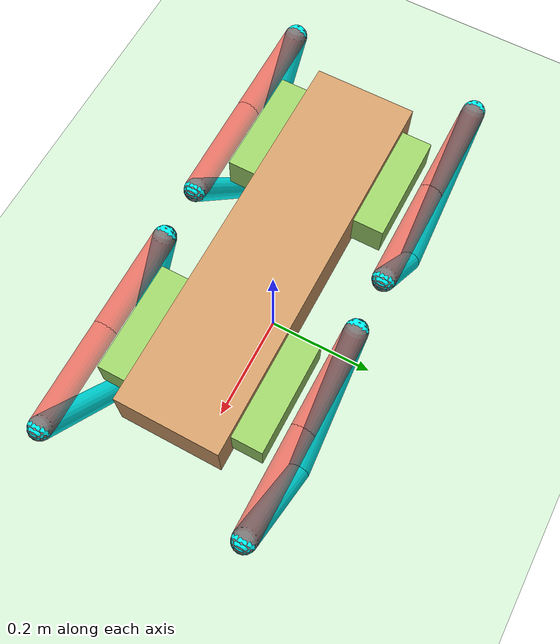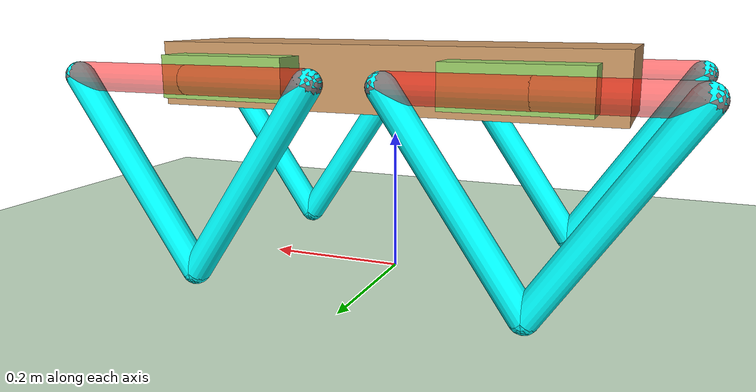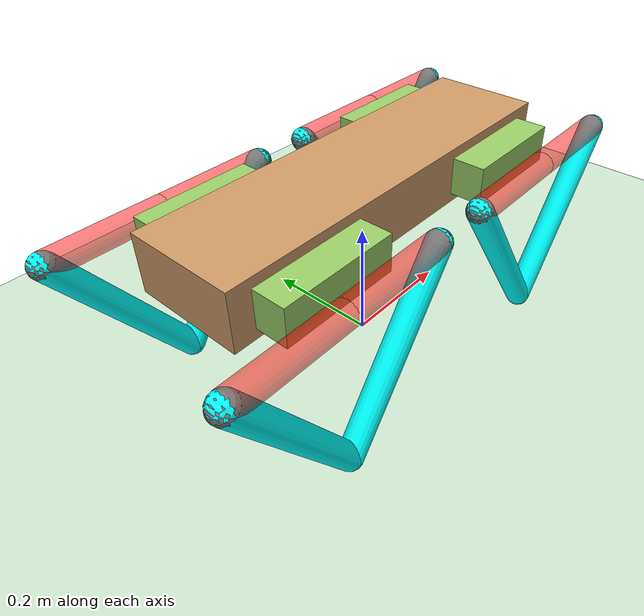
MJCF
<!-- Stanford Woofer Model

    The state space is populated with joints in the order that they are
    defined in this file.
-->
<mujoco model="woofer">
    <compiler angle="radian" coordinate="local" inertiafromgeom="auto"/>

    <default>
        <joint armature="0.0024" solimplimit="0.9 0.95 0.001" solreflimit="0.001 1" stiffness="0"/>
        <geom conaffinity="0" condim="3" contype="1" friction="1.5 .1 .1" rgba="0.8 0.6 .4 1" solimp="0.9 0.95 0.001" solref="0.005 2"/>
        <motor ctrllimited="true" forcelimited="true"/>
    </default>

    <option>
        <flag sensornoise="enable"/>
    </option>

    <sensor>
        <accelerometer name="accel" noise="0.01" site="imu_site"/>
        <gyro name="gyro" noise="0.02" site="imu_site"/>

        <jointpos joint="fr_x" noise="0.001"/>
        <jointpos joint="fr_thigh_1" noise="0.001"/>
        <jointpos joint="fr_thigh_2" noise="0.001"/>

        <jointpos joint="fl_x" noise="0.001"/>
        <jointpos joint="fl_thigh_1" noise="0.001"/>
        <jointpos joint="fl_thigh_2" noise="0.001"/>

        <jointpos joint="br_x" noise="0.001"/>
        <jointpos joint="br_thigh_1" noise="0.001"/>
        <jointpos joint="br_thigh_2" noise="0.001"/>

        <jointpos joint="bl_x" noise="0.001"/>
        <jointpos joint="bl_thigh_1" noise="0.001"/>
        <jointpos joint="bl_thigh_2" noise="0.001"/>

        <jointvel joint="fr_x" noise="0.01"/>
        <jointvel joint="fr_thigh_1" noise="0.01"/>
        <jointvel joint="fr_thigh_2" noise="0.01"/>

        <jointvel joint="fl_x" noise="0.01"/>
        <jointvel joint="fl_thigh_1" noise="0.01"/>
        <jointvel joint="fl_thigh_2" noise="0.01"/>

        <jointvel joint="br_x" noise="0.01"/>
        <jointvel joint="br_thigh_1" noise="0.01"/>
        <jointvel joint="br_thigh_2" noise="0.01"/>

        <jointvel joint="bl_x" noise="0.01"/>
        <jointvel joint="bl_thigh_1" noise="0.01"/>
        <jointvel joint="bl_thigh_2" noise="0.01"/>
    </sensor>

    <size nstack="300000" nuser_geom="1"/>

    <option timestep="0.0001"/>
    <asset>
        <texture builtin="gradient" height="100" rgb1="1 1 1" rgb2="0 0 0" type="skybox" width="100"/>
        <texture builtin="flat" height="1278" mark="cross" markrgb="1 1 1" name="texgeom" random="0.01" rgb1="0.8 0.6 0.4" rgb2="0.8 0.6 0.4" type="cube" width="127"/>
        <texture builtin="checker" height="100" name="texplane" rgb1="0 0 0" rgb2="0.8 0.8 0.8" type="2d" width="100"/>
        <material name="MatPlane" reflectance="0.5" shininess="1" specular="1" texrepeat="60 60" texture="texplane"/>
        <material name="geom" texture="texgeom" texuniform="true"/>
    </asset>

    <worldbody>
        <light cutoff="100" diffuse="1 1 1" dir="-0 0 -1.3" directional="true" exponent="1" pos="0 0 1.3" specular=".1 .1 .1"/>
        <geom conaffinity="1" condim="3" material="MatPlane" name="floor" pos="0 0 0" rgba="0.8 0.9 0.8 1" size="40 40 40" type="plane"/>

        <body name="torso" pos="0 0 0.2845751311064591">
            <camera name="track" mode="trackcom" pos="0 -2 0.3" xyaxes="1 0 0 0 0 1"/>
            <joint armature="0" axis="1 0 0" damping="0" limited="false" name="rootx" pos="0 0 0" stiffness="0" type="free"/>

            <inertial pos="0 0 0" mass="3.0" diaginertia="0.0065733 0.074011 0.077763"/>
            <geom pos="0 0 0" name="torso" size="0.33 0.088 0.046" type="box"/>

            <site name="imu_site" pos="0 0 0" size=".01 .01 .01" type="box"/>

            <body name="fr_module" pos="0.23 -0.109 0">
                <geom pos="-0.029 0 0" name="fr_block" type="box" size="0.094 0.031 0.03" rgba="0.6 0.8 .4 1"/>
                <joint axis="1 0 0" name="fr_x" pos="0 0 0" limited="true" range="-3.0 3.0" type="hinge" damping="0.2"/>
                <inertial pos="0 0 0" mass="1.033" fullinertia="0.002449 0.005043 0.006616 -0.001784 -.00002 -0.000007"/>
                <body name="fr_thigh_1" pos="0.09 -0.064 0">
                    <joint axis="0 1 0" name="fr_thigh_1" pos="-0.09 0 0" limited="true" range="-3.0 3.0" type="hinge" damping="0.2"/>
                    <geom axisangle="0 1 0 1.57" name="fr_thigh_1" size="0.02 0.09" type="capsule" rgba = "1 0 0 0.5" mass="0.07"/>
                    <body name="fr_shin_1" pos="0.00 0 -0.13228756555322954">
                        <joint axis="0 1 0" name="fr_shin_1" pos="0.09 0 0.13228756555322954" type="hinge"/>
                        <geom axisangle="0 1 0 0.5974064166453502" name="fr_shin_1" rgba="0 1 1 1" size="0.02 0.16" type="capsule" mass="0.059"/>
                    </body>
                </body>
                <body name="fr_thigh_2" pos="-0.09 -0.064 0">
                    <joint axis="0 1 0" name="fr_thigh_2" pos="0.09 0 0" limited="true" range="-3.0 3.0" type="hinge" damping="0.2"/>
                    <geom axisangle="0 1 0 1.57" name="fr_thigh_2" size="0.02 0.09" type="capsule" rgba = "1 0 0 0.5" mass="0.07"/>
                    <body name="fr_shin_2" pos="0.00 0 -0.13228756555322954">
                        <joint axis="0 1 0" name="fr_shin_2" pos="-0.09 0 0.13228756555322954" type="hinge"/>
                        <geom axisangle="0 1 0 -0.5974064166453502" name="fr_shin_2" rgba="0 1 1 1" size="0.02 0.16" type="capsule" mass="0.059"/>
                    </body>
                </body>
            </body>

            <body name="fl_module" pos="0.23 0.109 0">
                <geom pos = "-0.029 0 0" name="fl_block" type="box" size="0.094 0.031 0.03" rgba="0.6 0.8 .4 1"/>
                <joint axis="1 0 0" name="fl_x" pos="0 0 0" limited="true" range="-3.0 3.0" type="hinge" damping="0.2"/>
                <inertial pos="0 0 0" mass="1.033" fullinertia="0.002449 0.005043 0.006616 -0.001784 -.00002 -0.000007"/>
                <body name="fl_thigh_1" pos="0.09 0.064 0">
                    <joint axis="0 1 0" name="fl_thigh_1" pos="-0.09 0 0" limited="true" range="-3.0 3.0" type="hinge" damping="0.2"/>
                    <geom axisangle="0 1 0 1.57" name="fl_thigh_1" size="0.02 0.09" type="capsule" rgba = "1 0 0 0.5" mass="0.07"/>
                    <body name="fl_shin_1" pos="0.00 0 -0.13228756555322954">
                        <joint axis="0 1 0" name="fl_shin_1" pos="0.09 0 0.13228756555322954" type="hinge"/>
                        <geom axisangle="0 1 0 0.5974064166453502" name="fl_shin_1" rgba="0 1 1 1" size="0.02 0.16" type="capsule" mass="0.059"/>
                    </body>
                </body>
                <body name="fl_thigh_2" pos="-0.09 0.064 0">
                    <joint axis="0 1 0" name="fl_thigh_2" pos="0.09 0 0" limited="true" range="-3.0 3.0" type="hinge" damping="0.2"/>
                    <geom axisangle="0 1 0 1.57" name="fl_thigh_2" size="0.02 0.09" type="capsule" rgba = "1 0 0 0.5" mass="0.07"/>
                    <body name="fl_shin_2" pos="0.00 0 -0.13228756555322954">
                        <joint axis="0 1 0" name="fl_shin_2" pos="-0.09 0 0.13228756555322954" type="hinge"/>
                        <geom axisangle="0 1 0 -0.5974064166453502" name="fl_shin_2" rgba="0 1 1 1" size="0.02 0.16" type="capsule" mass="0.059"/>
                    </body>
                </body>
            </body>

            <body name="br_module" pos="-0.23 -0.109 0">
                <geom pos="0.029 0 0" name="br_block" type="box" size="0.094 0.031 0.03" rgba="0.6 0.8 .4 1"/>
                <joint axis="1 0 0" name="br_x" pos="0 0 0" limited="true" range="-3.0 3.0" type="hinge" damping="0.2"/>
                <inertial pos="0 0 0" mass="1.033" fullinertia="0.002449 0.005043 0.006616 -0.001784 -.00002 -0.000007"/>
                <body name="br_thigh_1" pos="0.09 -0.064 0">
                    <joint axis="0 1 0" name="br_thigh_1" pos="-0.09 0 0" limited="true" range="-3.0 3.0" type="hinge" damping="0.2"/>
                    <geom axisangle="0 1 0 1.57" name="br_thigh_1" size="0.02 0.09" type="capsule" rgba = "1 0 0 0.5" mass="0.07"/>
                    <body name="br_shin_1" pos="0.00 0 -0.13228756555322954">
                        <joint axis="0 1 0" name="br_shin_1" pos="0.09 0 0.13228756555322954" type="hinge"/>
                        <geom axisangle="0 1 0 0.5974064166453502" name="br_shin_1" rgba="0 1 1 1" size="0.02 0.16" type="capsule" mass="0.059"/>
                    </body>
                </body>

                <body name="br_thigh_2" pos="-0.09 -0.064 0">
                    <joint axis="0 1 0" name="br_thigh_2" pos="0.09 0 0" limited="true" range="-3.0 3.0" type="hinge" damping="0.2"/>
                    <geom axisangle="0 1 0 1.57" name="br_thigh_2" size="0.02 0.09" type="capsule" rgba = "1 0 0 0.5" mass="0.07"/>
                    <body name="br_shin_2" pos="0.00 0 -0.13228756555322954">
                        <joint axis="0 1 0" name="br_shin_2" pos="-0.09 0 0.13228756555322954" type="hinge"/>
                        <geom axisangle="0 1 0 -0.5974064166453502" name="br_shin_2" rgba="0 1 1 1" size="0.02 0.16" type="capsule" mass="0.059"/>
                    </body>
                </body>
            </body>

            <body name="bl_module" pos="-0.23 0.109 0">
                <geom pos = "0.029 0 0" name="bl_block" type="box" size="0.094 0.031 0.03" rgba="0.6 0.8 .4 1"/>
                <joint axis="1 0 0" name="bl_x" pos="0 0 0" limited="true" range="-3.0 3.0" type="hinge" damping="0.2"/>
                <inertial pos="0 0 0" mass="1.033" fullinertia="0.002449 0.005043 0.006616 -0.001784 -.00002 -0.000007"/>
                <body name="bl_thigh_1" pos="0.09 0.064 0">
                    <joint axis="0 1 0" name="bl_thigh_1" pos="-0.09 0 0" limited="true" range="-3.0 3.0" type="hinge" damping="0.2"/>
                    <geom axisangle="0 1 0 1.57" name="bl_thigh_1" size="0.02 0.09" type="capsule" rgba = "1 0 0 0.5" mass="0.07"/>
                    <body name="bl_shin_1" pos="0.00 0 -0.13228756555322954">
                        <joint axis="0 1 0" name="bl_shin_1" pos="0.09 0 0.13228756555322954" type="hinge"/>
                        <geom axisangle="0 1 0 0.5974064166453502" name="bl_shin_1" rgba="0 1 1 1" size="0.02 0.16" type="capsule" mass="0.059"/>
                    </body>
                </body>

                <body name="bl_thigh_2" pos="-0.09 0.064 0">
                    <joint axis="0 1 0" name="bl_thigh_2" pos="0.09 0 0" limited="true" range="-3.0 3.0" type="hinge" damping="0.2"/>
                    <geom axisangle="0 1 0 1.57" name="bl_thigh_2" size="0.02 0.09" type="capsule" rgba = "1 0 0 0.5"  mass="0.07"/>
                    <body name="bl_shin_2" pos="0.00 0 -0.13228756555322954">
                        <joint axis="0 1 0" name="bl_shin_2" pos="-0.09 0 0.13228756555322954" type="hinge"/>
                        <geom axisangle="0 1 0 -0.5974064166453502" name="bl_shin_2" rgba="0 1 1 1" size="0.02 0.16" type="capsule" mass="0.059"/>
                    </body>
                </body>
            </body>
        </body>
    </worldbody>

    <equality>
        <connect name="fr_connect" body1="fr_shin_1" body2="fr_shin_2" anchor="-0.09 0 -0.133"/>
        <connect name="fl_connect" body1="fl_shin_1" body2="fl_shin_2" anchor="-0.09 0 -0.133"/>
        <connect name="br_connect" body1="br_shin_1" body2="br_shin_2" anchor="-0.09 0 -0.133"/>
        <connect name="bl_connect" body1="bl_shin_1" body2="bl_shin_2" anchor="-0.09 0 -0.133"/>
    </equality>

    <actuator>
        <motor gear="1" joint="fr_x" name="fr_x" forcerange="-12.0 12.0" ctrlrange="-12.0 12.0"/>
        <motor gear="1" joint="fr_thigh_1" name="fr_thigh_1" forcerange="-12.0 12.0" ctrlrange="-12.0 12.0"/>
        <motor gear="1" joint="fr_thigh_2" name="fr_thigh_2" forcerange="-12.0 12.0" ctrlrange="-12.0 12.0"/>

        <motor gear="1" joint="fl_x" name="fl_x" forcerange="-12.0 12.0" ctrlrange="-12.0 12.0"/>
        <motor gear="1" joint="fl_thigh_1" name="fl_thigh_1" forcerange="-12.0 12.0" ctrlrange="-12.0 12.0"/>
        <motor gear="1" joint="fl_thigh_2" name="fl_thigh_2" forcerange="-12.0 12.0" ctrlrange="-12.0 12.0"/>

        <motor gear="1" joint="br_x" name="br_x" forcerange="-12.0 12.0" ctrlrange="-12.0 12.0"/>
        <motor gear="1" joint="br_thigh_1" name="br_thigh_1" forcerange="-12.0 12.0" ctrlrange="-12.0 12.0"/>
        <motor gear="1" joint="br_thigh_2" name="br_thigh_2" forcerange="-12.0 12.0" ctrlrange="-12.0 12.0"/>

        <motor gear="1" joint="bl_x" name="bl_x" forcerange="-12.0 12.0" ctrlrange="-12.0 12.0"/>
        <motor gear="1" joint="bl_thigh_1" name="bl_thigh_1" forcerange="-12.0 12.0" ctrlrange="-12.0 12.0"/>
        <motor gear="1" joint="bl_thigh_2" name="bl_thigh_2" forcerange="-12.0 12.0" ctrlrange="-12.0 12.0"/>
    </actuator>
</mujoco>
